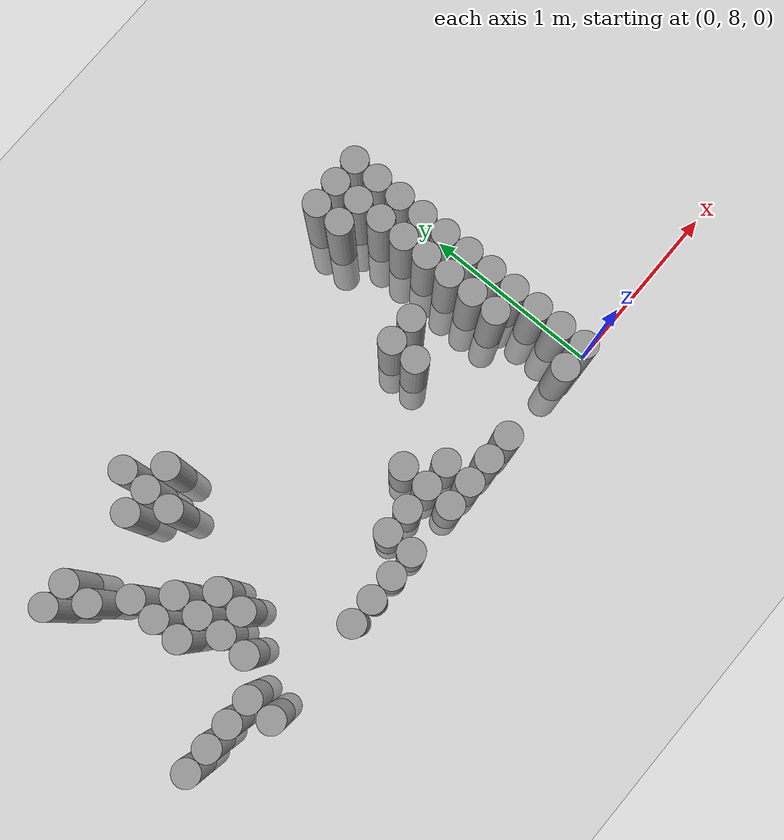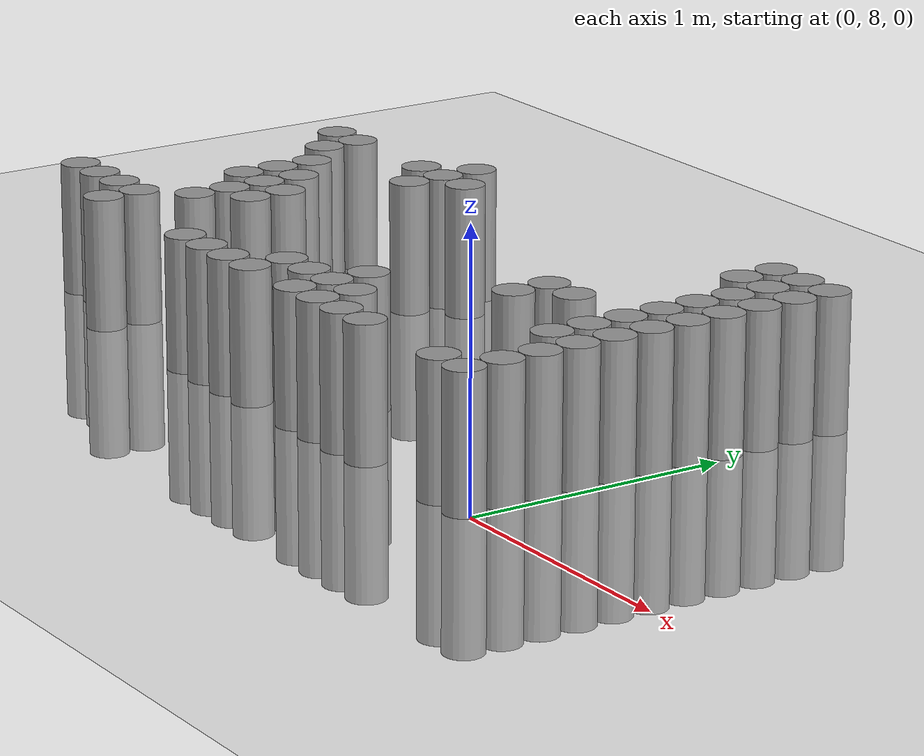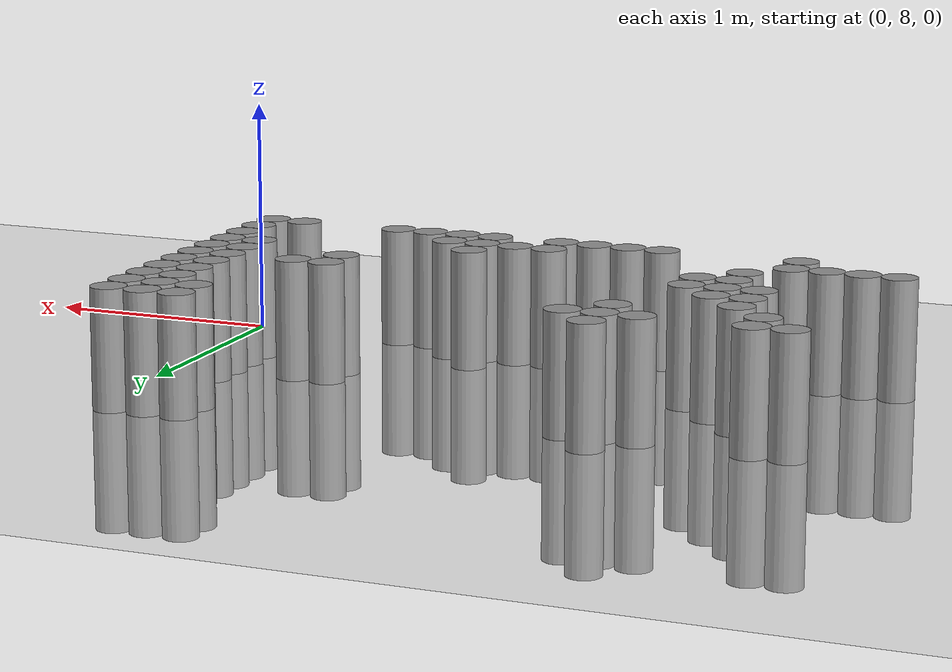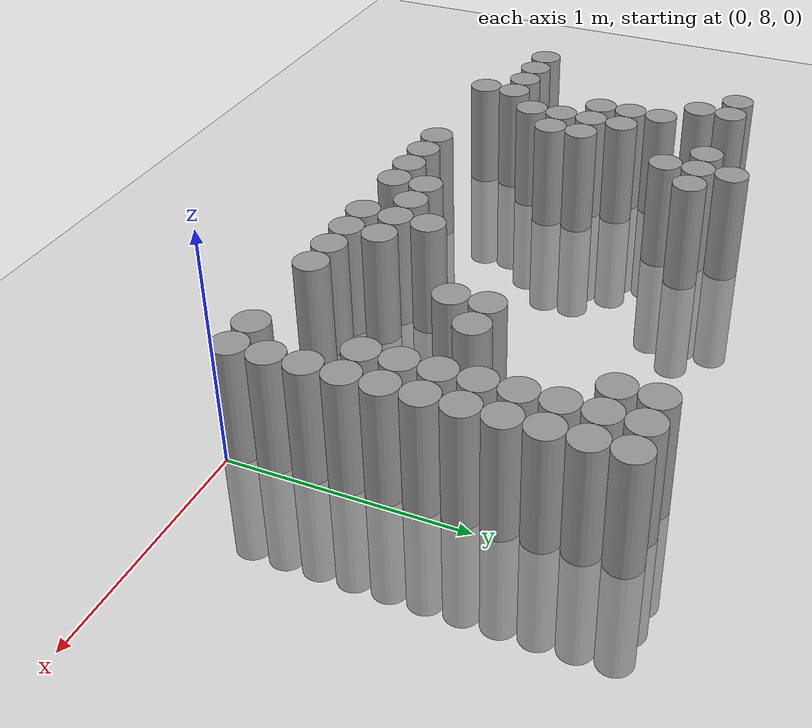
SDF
<sdf version="1.6">
 <world name="default">
  <model name="ground_plane">
   <static>1</static>
   <static>1</static>
   <link name="link">
    <collision name="collision">
     <geometry><plane><normal>0 0 1</normal><size>100 100</size></plane></geometry>
     <surface><friction><ode><mu>100</mu><mu2>50</mu2></ode></friction></surface>
    </collision>
    <visual name="visual">
     <cast_shadows>0</cast_shadows>
     <geometry><plane><normal>0 0 1</normal><size>100 100</size></plane></geometry>
     <material>
      <script><uri>file://media/materials/scripts/gazebo.material</uri><name>Gazebo/Grey</name></script>
     </material>
    </visual>
   </link>
  </model>
  <model name="unit_cylinder_166">
   <static>1</static>
   <pose>-2.925000 8.175000 0.000000 0.000000 0.000000 0.000000</pose>
   <link name="link">
    <inertial>
     <mass>1</mass>
     <inertia><ixx>0.145833</ixx><ixy>0</ixy><ixz>0</ixz><iyy>0.145833</iyy><iyz>0</iyz><izz>0.125</izz></inertia>
    </inertial>
    <collision name="collision">
     <geometry><cylinder><radius>0.075000</radius><length>1</length></cylinder></geometry>
    </collision>
    <visual name="visual">
     <geometry><cylinder><radius>0.075000</radius><length>1</length></cylinder></geometry>
     <material>
      <script><name>Gazebo/Grey</name><uri>file://media/materials/scripts/gazebo.material</uri></script>
     </material>
    </visual>
   </link>
  </model>
  <model name="unit_cylinder_169">
   <static>1</static>
   <pose>-2.775000 8.175000 0.000000 0.000000 0.000000 0.000000</pose>
   <link name="link">
    <inertial>
     <mass>1</mass>
     <inertia><ixx>0.145833</ixx><ixy>0</ixy><ixz>0</ixz><iyy>0.145833</iyy><iyz>0</iyz><izz>0.125</izz></inertia>
    </inertial>
    <collision name="collision">
     <geometry><cylinder><radius>0.075000</radius><length>1</length></cylinder></geometry>
    </collision>
    <visual name="visual">
     <geometry><cylinder><radius>0.075000</radius><length>1</length></cylinder></geometry>
     <material>
      <script><name>Gazebo/Grey</name><uri>file://media/materials/scripts/gazebo.material</uri></script>
     </material>
    </visual>
   </link>
  </model>
  <model name="unit_cylinder_170">
   <static>1</static>
   <pose>-2.775000 9.225000 0.000000 0.000000 0.000000 0.000000</pose>
   <link name="link">
    <inertial>
     <mass>1</mass>
     <inertia><ixx>0.145833</ixx><ixy>0</ixy><ixz>0</ixz><iyy>0.145833</iyy><iyz>0</iyz><izz>0.125</izz></inertia>
    </inertial>
    <collision name="collision">
     <geometry><cylinder><radius>0.075000</radius><length>1</length></cylinder></geometry>
    </collision>
    <visual name="visual">
     <geometry><cylinder><radius>0.075000</radius><length>1</length></cylinder></geometry>
     <material>
      <script><name>Gazebo/Grey</name><uri>file://media/materials/scripts/gazebo.material</uri></script>
     </material>
    </visual>
   </link>
  </model>
  <model name="unit_cylinder_175">
   <static>1</static>
   <pose>-2.625000 8.175000 0.000000 0.000000 0.000000 0.000000</pose>
   <link name="link">
    <inertial>
     <mass>1</mass>
     <inertia><ixx>0.145833</ixx><ixy>0</ixy><ixz>0</ixz><iyy>0.145833</iyy><iyz>0</iyz><izz>0.125</izz></inertia>
    </inertial>
    <collision name="collision">
     <geometry><cylinder><radius>0.075000</radius><length>1</length></cylinder></geometry>
    </collision>
    <visual name="visual">
     <geometry><cylinder><radius>0.075000</radius><length>1</length></cylinder></geometry>
     <material>
      <script><name>Gazebo/Grey</name><uri>file://media/materials/scripts/gazebo.material</uri></script>
     </material>
    </visual>
   </link>
  </model>
  <model name="unit_cylinder_176">
   <static>1</static>
   <pose>-2.625000 9.075000 0.000000 0.000000 0.000000 0.000000</pose>
   <link name="link">
    <inertial>
     <mass>1</mass>
     <inertia><ixx>0.145833</ixx><ixy>0</ixy><ixz>0</ixz><iyy>0.145833</iyy><iyz>0</iyz><izz>0.125</izz></inertia>
    </inertial>
    <collision name="collision">
     <geometry><cylinder><radius>0.075000</radius><length>1</length></cylinder></geometry>
    </collision>
    <visual name="visual">
     <geometry><cylinder><radius>0.075000</radius><length>1</length></cylinder></geometry>
     <material>
      <script><name>Gazebo/Grey</name><uri>file://media/materials/scripts/gazebo.material</uri></script>
     </material>
    </visual>
   </link>
  </model>
  <model name="unit_cylinder_177">
   <static>1</static>
   <pose>-2.625000 9.225000 0.000000 0.000000 0.000000 0.000000</pose>
   <link name="link">
    <inertial>
     <mass>1</mass>
     <inertia><ixx>0.145833</ixx><ixy>0</ixy><ixz>0</ixz><iyy>0.145833</iyy><iyz>0</iyz><izz>0.125</izz></inertia>
    </inertial>
    <collision name="collision">
     <geometry><cylinder><radius>0.075000</radius><length>1</length></cylinder></geometry>
    </collision>
    <visual name="visual">
     <geometry><cylinder><radius>0.075000</radius><length>1</length></cylinder></geometry>
     <material>
      <script><name>Gazebo/Grey</name><uri>file://media/materials/scripts/gazebo.material</uri></script>
     </material>
    </visual>
   </link>
  </model>
  <model name="unit_cylinder_182">
   <static>1</static>
   <pose>-2.475000 8.025000 0.000000 0.000000 0.000000 0.000000</pose>
   <link name="link">
    <inertial>
     <mass>1</mass>
     <inertia><ixx>0.145833</ixx><ixy>0</ixy><ixz>0</ixz><iyy>0.145833</iyy><iyz>0</iyz><izz>0.125</izz></inertia>
    </inertial>
    <collision name="collision">
     <geometry><cylinder><radius>0.075000</radius><length>1</length></cylinder></geometry>
    </collision>
    <visual name="visual">
     <geometry><cylinder><radius>0.075000</radius><length>1</length></cylinder></geometry>
     <material>
      <script><name>Gazebo/Grey</name><uri>file://media/materials/scripts/gazebo.material</uri></script>
     </material>
    </visual>
   </link>
  </model>
  <model name="unit_cylinder_183">
   <static>1</static>
   <pose>-2.475000 8.175000 0.000000 0.000000 0.000000 0.000000</pose>
   <link name="link">
    <inertial>
     <mass>1</mass>
     <inertia><ixx>0.145833</ixx><ixy>0</ixy><ixz>0</ixz><iyy>0.145833</iyy><iyz>0</iyz><izz>0.125</izz></inertia>
    </inertial>
    <collision name="collision">
     <geometry><cylinder><radius>0.075000</radius><length>1</length></cylinder></geometry>
    </collision>
    <visual name="visual">
     <geometry><cylinder><radius>0.075000</radius><length>1</length></cylinder></geometry>
     <material>
      <script><name>Gazebo/Grey</name><uri>file://media/materials/scripts/gazebo.material</uri></script>
     </material>
    </visual>
   </link>
  </model>
  <model name="unit_cylinder_184">
   <static>1</static>
   <pose>-2.475000 8.625000 0.000000 0.000000 0.000000 0.000000</pose>
   <link name="link">
    <inertial>
     <mass>1</mass>
     <inertia><ixx>0.145833</ixx><ixy>0</ixy><ixz>0</ixz><iyy>0.145833</iyy><iyz>0</iyz><izz>0.125</izz></inertia>
    </inertial>
    <collision name="collision">
     <geometry><cylinder><radius>0.075000</radius><length>1</length></cylinder></geometry>
    </collision>
    <visual name="visual">
     <geometry><cylinder><radius>0.075000</radius><length>1</length></cylinder></geometry>
     <material>
      <script><name>Gazebo/Grey</name><uri>file://media/materials/scripts/gazebo.material</uri></script>
     </material>
    </visual>
   </link>
  </model>
  <model name="unit_cylinder_185">
   <static>1</static>
   <pose>-2.475000 8.775000 0.000000 0.000000 0.000000 0.000000</pose>
   <link name="link">
    <inertial>
     <mass>1</mass>
     <inertia><ixx>0.145833</ixx><ixy>0</ixy><ixz>0</ixz><iyy>0.145833</iyy><iyz>0</iyz><izz>0.125</izz></inertia>
    </inertial>
    <collision name="collision">
     <geometry><cylinder><radius>0.075000</radius><length>1</length></cylinder></geometry>
    </collision>
    <visual name="visual">
     <geometry><cylinder><radius>0.075000</radius><length>1</length></cylinder></geometry>
     <material>
      <script><name>Gazebo/Grey</name><uri>file://media/materials/scripts/gazebo.material</uri></script>
     </material>
    </visual>
   </link>
  </model>
  <model name="unit_cylinder_186">
   <static>1</static>
   <pose>-2.475000 8.925000 0.000000 0.000000 0.000000 0.000000</pose>
   <link name="link">
    <inertial>
     <mass>1</mass>
     <inertia><ixx>0.145833</ixx><ixy>0</ixy><ixz>0</ixz><iyy>0.145833</iyy><iyz>0</iyz><izz>0.125</izz></inertia>
    </inertial>
    <collision name="collision">
     <geometry><cylinder><radius>0.075000</radius><length>1</length></cylinder></geometry>
    </collision>
    <visual name="visual">
     <geometry><cylinder><radius>0.075000</radius><length>1</length></cylinder></geometry>
     <material>
      <script><name>Gazebo/Grey</name><uri>file://media/materials/scripts/gazebo.material</uri></script>
     </material>
    </visual>
   </link>
  </model>
  <model name="unit_cylinder_188">
   <static>1</static>
   <pose>-2.325000 8.325000 0.000000 0.000000 0.000000 0.000000</pose>
   <link name="link">
    <inertial>
     <mass>1</mass>
     <inertia><ixx>0.145833</ixx><ixy>0</ixy><ixz>0</ixz><iyy>0.145833</iyy><iyz>0</iyz><izz>0.125</izz></inertia>
    </inertial>
    <collision name="collision">
     <geometry><cylinder><radius>0.075000</radius><length>1</length></cylinder></geometry>
    </collision>
    <visual name="visual">
     <geometry><cylinder><radius>0.075000</radius><length>1</length></cylinder></geometry>
     <material>
      <script><name>Gazebo/Grey</name><uri>file://media/materials/scripts/gazebo.material</uri></script>
     </material>
    </visual>
   </link>
  </model>
  <model name="unit_cylinder_189">
   <static>1</static>
   <pose>-2.325000 8.475000 0.000000 0.000000 0.000000 0.000000</pose>
   <link name="link">
    <inertial>
     <mass>1</mass>
     <inertia><ixx>0.145833</ixx><ixy>0</ixy><ixz>0</ixz><iyy>0.145833</iyy><iyz>0</iyz><izz>0.125</izz></inertia>
    </inertial>
    <collision name="collision">
     <geometry><cylinder><radius>0.075000</radius><length>1</length></cylinder></geometry>
    </collision>
    <visual name="visual">
     <geometry><cylinder><radius>0.075000</radius><length>1</length></cylinder></geometry>
     <material>
      <script><name>Gazebo/Grey</name><uri>file://media/materials/scripts/gazebo.material</uri></script>
     </material>
    </visual>
   </link>
  </model>
  <model name="unit_cylinder_190">
   <static>1</static>
   <pose>-2.325000 8.625000 0.000000 0.000000 0.000000 0.000000</pose>
   <link name="link">
    <inertial>
     <mass>1</mass>
     <inertia><ixx>0.145833</ixx><ixy>0</ixy><ixz>0</ixz><iyy>0.145833</iyy><iyz>0</iyz><izz>0.125</izz></inertia>
    </inertial>
    <collision name="collision">
     <geometry><cylinder><radius>0.075000</radius><length>1</length></cylinder></geometry>
    </collision>
    <visual name="visual">
     <geometry><cylinder><radius>0.075000</radius><length>1</length></cylinder></geometry>
     <material>
      <script><name>Gazebo/Grey</name><uri>file://media/materials/scripts/gazebo.material</uri></script>
     </material>
    </visual>
   </link>
  </model>
  <model name="unit_cylinder_191">
   <static>1</static>
   <pose>-2.325000 8.775000 0.000000 0.000000 0.000000 0.000000</pose>
   <link name="link">
    <inertial>
     <mass>1</mass>
     <inertia><ixx>0.145833</ixx><ixy>0</ixy><ixz>0</ixz><iyy>0.145833</iyy><iyz>0</iyz><izz>0.125</izz></inertia>
    </inertial>
    <collision name="collision">
     <geometry><cylinder><radius>0.075000</radius><length>1</length></cylinder></geometry>
    </collision>
    <visual name="visual">
     <geometry><cylinder><radius>0.075000</radius><length>1</length></cylinder></geometry>
     <material>
      <script><name>Gazebo/Grey</name><uri>file://media/materials/scripts/gazebo.material</uri></script>
     </material>
    </visual>
   </link>
  </model>
  <model name="unit_cylinder_193">
   <static>1</static>
   <pose>-2.175000 8.475000 0.000000 0.000000 0.000000 0.000000</pose>
   <link name="link">
    <inertial>
     <mass>1</mass>
     <inertia><ixx>0.145833</ixx><ixy>0</ixy><ixz>0</ixz><iyy>0.145833</iyy><iyz>0</iyz><izz>0.125</izz></inertia>
    </inertial>
    <collision name="collision">
     <geometry><cylinder><radius>0.075000</radius><length>1</length></cylinder></geometry>
    </collision>
    <visual name="visual">
     <geometry><cylinder><radius>0.075000</radius><length>1</length></cylinder></geometry>
     <material>
      <script><name>Gazebo/Grey</name><uri>file://media/materials/scripts/gazebo.material</uri></script>
     </material>
    </visual>
   </link>
  </model>
  <model name="unit_cylinder_194">
   <static>1</static>
   <pose>-2.175000 8.625000 0.000000 0.000000 0.000000 0.000000</pose>
   <link name="link">
    <inertial>
     <mass>1</mass>
     <inertia><ixx>0.145833</ixx><ixy>0</ixy><ixz>0</ixz><iyy>0.145833</iyy><iyz>0</iyz><izz>0.125</izz></inertia>
    </inertial>
    <collision name="collision">
     <geometry><cylinder><radius>0.075000</radius><length>1</length></cylinder></geometry>
    </collision>
    <visual name="visual">
     <geometry><cylinder><radius>0.075000</radius><length>1</length></cylinder></geometry>
     <material>
      <script><name>Gazebo/Grey</name><uri>file://media/materials/scripts/gazebo.material</uri></script>
     </material>
    </visual>
   </link>
  </model>
  <model name="unit_cylinder_195">
   <static>1</static>
   <pose>-2.175000 9.225000 0.000000 0.000000 0.000000 0.000000</pose>
   <link name="link">
    <inertial>
     <mass>1</mass>
     <inertia><ixx>0.145833</ixx><ixy>0</ixy><ixz>0</ixz><iyy>0.145833</iyy><iyz>0</iyz><izz>0.125</izz></inertia>
    </inertial>
    <collision name="collision">
     <geometry><cylinder><radius>0.075000</radius><length>1</length></cylinder></geometry>
    </collision>
    <visual name="visual">
     <geometry><cylinder><radius>0.075000</radius><length>1</length></cylinder></geometry>
     <material>
      <script><name>Gazebo/Grey</name><uri>file://media/materials/scripts/gazebo.material</uri></script>
     </material>
    </visual>
   </link>
  </model>
  <model name="unit_cylinder_196">
   <static>1</static>
   <pose>-2.025000 9.075000 0.000000 0.000000 0.000000 0.000000</pose>
   <link name="link">
    <inertial>
     <mass>1</mass>
     <inertia><ixx>0.145833</ixx><ixy>0</ixy><ixz>0</ixz><iyy>0.145833</iyy><iyz>0</iyz><izz>0.125</izz></inertia>
    </inertial>
    <collision name="collision">
     <geometry><cylinder><radius>0.075000</radius><length>1</length></cylinder></geometry>
    </collision>
    <visual name="visual">
     <geometry><cylinder><radius>0.075000</radius><length>1</length></cylinder></geometry>
     <material>
      <script><name>Gazebo/Grey</name><uri>file://media/materials/scripts/gazebo.material</uri></script>
     </material>
    </visual>
   </link>
  </model>
  <model name="unit_cylinder_197">
   <static>1</static>
   <pose>-2.025000 9.225000 0.000000 0.000000 0.000000 0.000000</pose>
   <link name="link">
    <inertial>
     <mass>1</mass>
     <inertia><ixx>0.145833</ixx><ixy>0</ixy><ixz>0</ixz><iyy>0.145833</iyy><iyz>0</iyz><izz>0.125</izz></inertia>
    </inertial>
    <collision name="collision">
     <geometry><cylinder><radius>0.075000</radius><length>1</length></cylinder></geometry>
    </collision>
    <visual name="visual">
     <geometry><cylinder><radius>0.075000</radius><length>1</length></cylinder></geometry>
     <material>
      <script><name>Gazebo/Grey</name><uri>file://media/materials/scripts/gazebo.material</uri></script>
     </material>
    </visual>
   </link>
  </model>
  <model name="unit_cylinder_198">
   <static>1</static>
   <pose>-2.025000 9.375000 0.000000 0.000000 0.000000 0.000000</pose>
   <link name="link">
    <inertial>
     <mass>1</mass>
     <inertia><ixx>0.145833</ixx><ixy>0</ixy><ixz>0</ixz><iyy>0.145833</iyy><iyz>0</iyz><izz>0.125</izz></inertia>
    </inertial>
    <collision name="collision">
     <geometry><cylinder><radius>0.075000</radius><length>1</length></cylinder></geometry>
    </collision>
    <visual name="visual">
     <geometry><cylinder><radius>0.075000</radius><length>1</length></cylinder></geometry>
     <material>
      <script><name>Gazebo/Grey</name><uri>file://media/materials/scripts/gazebo.material</uri></script>
     </material>
    </visual>
   </link>
  </model>
  <model name="unit_cylinder_199">
   <static>1</static>
   <pose>-1.875000 8.025000 0.000000 0.000000 0.000000 0.000000</pose>
   <link name="link">
    <inertial>
     <mass>1</mass>
     <inertia><ixx>0.145833</ixx><ixy>0</ixy><ixz>0</ixz><iyy>0.145833</iyy><iyz>0</iyz><izz>0.125</izz></inertia>
    </inertial>
    <collision name="collision">
     <geometry><cylinder><radius>0.075000</radius><length>1</length></cylinder></geometry>
    </collision>
    <visual name="visual">
     <geometry><cylinder><radius>0.075000</radius><length>1</length></cylinder></geometry>
     <material>
      <script><name>Gazebo/Grey</name><uri>file://media/materials/scripts/gazebo.material</uri></script>
     </material>
    </visual>
   </link>
  </model>
  <model name="unit_cylinder_200">
   <static>1</static>
   <pose>-1.875000 9.225000 0.000000 0.000000 0.000000 0.000000</pose>
   <link name="link">
    <inertial>
     <mass>1</mass>
     <inertia><ixx>0.145833</ixx><ixy>0</ixy><ixz>0</ixz><iyy>0.145833</iyy><iyz>0</iyz><izz>0.125</izz></inertia>
    </inertial>
    <collision name="collision">
     <geometry><cylinder><radius>0.075000</radius><length>1</length></cylinder></geometry>
    </collision>
    <visual name="visual">
     <geometry><cylinder><radius>0.075000</radius><length>1</length></cylinder></geometry>
     <material>
      <script><name>Gazebo/Grey</name><uri>file://media/materials/scripts/gazebo.material</uri></script>
     </material>
    </visual>
   </link>
  </model>
  <model name="unit_cylinder_202">
   <static>1</static>
   <pose>-1.725000 8.025000 0.000000 0.000000 0.000000 0.000000</pose>
   <link name="link">
    <inertial>
     <mass>1</mass>
     <inertia><ixx>0.145833</ixx><ixy>0</ixy><ixz>0</ixz><iyy>0.145833</iyy><iyz>0</iyz><izz>0.125</izz></inertia>
    </inertial>
    <collision name="collision">
     <geometry><cylinder><radius>0.075000</radius><length>1</length></cylinder></geometry>
    </collision>
    <visual name="visual">
     <geometry><cylinder><radius>0.075000</radius><length>1</length></cylinder></geometry>
     <material>
      <script><name>Gazebo/Grey</name><uri>file://media/materials/scripts/gazebo.material</uri></script>
     </material>
    </visual>
   </link>
  </model>
  <model name="unit_cylinder_205">
   <static>1</static>
   <pose>-1.575000 8.025000 0.000000 0.000000 0.000000 0.000000</pose>
   <link name="link">
    <inertial>
     <mass>1</mass>
     <inertia><ixx>0.145833</ixx><ixy>0</ixy><ixz>0</ixz><iyy>0.145833</iyy><iyz>0</iyz><izz>0.125</izz></inertia>
    </inertial>
    <collision name="collision">
     <geometry><cylinder><radius>0.075000</radius><length>1</length></cylinder></geometry>
    </collision>
    <visual name="visual">
     <geometry><cylinder><radius>0.075000</radius><length>1</length></cylinder></geometry>
     <material>
      <script><name>Gazebo/Grey</name><uri>file://media/materials/scripts/gazebo.material</uri></script>
     </material>
    </visual>
   </link>
  </model>
  <model name="unit_cylinder_208">
   <static>1</static>
   <pose>-1.425000 8.025000 0.000000 0.000000 0.000000 0.000000</pose>
   <link name="link">
    <inertial>
     <mass>1</mass>
     <inertia><ixx>0.145833</ixx><ixy>0</ixy><ixz>0</ixz><iyy>0.145833</iyy><iyz>0</iyz><izz>0.125</izz></inertia>
    </inertial>
    <collision name="collision">
     <geometry><cylinder><radius>0.075000</radius><length>1</length></cylinder></geometry>
    </collision>
    <visual name="visual">
     <geometry><cylinder><radius>0.075000</radius><length>1</length></cylinder></geometry>
     <material>
      <script><name>Gazebo/Grey</name><uri>file://media/materials/scripts/gazebo.material</uri></script>
     </material>
    </visual>
   </link>
  </model>
  <model name="unit_cylinder_209">
   <static>1</static>
   <pose>-1.425000 8.175000 0.000000 0.000000 0.000000 0.000000</pose>
   <link name="link">
    <inertial>
     <mass>1</mass>
     <inertia><ixx>0.145833</ixx><ixy>0</ixy><ixz>0</ixz><iyy>0.145833</iyy><iyz>0</iyz><izz>0.125</izz></inertia>
    </inertial>
    <collision name="collision">
     <geometry><cylinder><radius>0.075000</radius><length>1</length></cylinder></geometry>
    </collision>
    <visual name="visual">
     <geometry><cylinder><radius>0.075000</radius><length>1</length></cylinder></geometry>
     <material>
      <script><name>Gazebo/Grey</name><uri>file://media/materials/scripts/gazebo.material</uri></script>
     </material>
    </visual>
   </link>
  </model>
  <model name="unit_cylinder_215">
   <static>1</static>
   <pose>-1.275000 8.175000 0.000000 0.000000 0.000000 0.000000</pose>
   <link name="link">
    <inertial>
     <mass>1</mass>
     <inertia><ixx>0.145833</ixx><ixy>0</ixy><ixz>0</ixz><iyy>0.145833</iyy><iyz>0</iyz><izz>0.125</izz></inertia>
    </inertial>
    <collision name="collision">
     <geometry><cylinder><radius>0.075000</radius><length>1</length></cylinder></geometry>
    </collision>
    <visual name="visual">
     <geometry><cylinder><radius>0.075000</radius><length>1</length></cylinder></geometry>
     <material>
      <script><name>Gazebo/Grey</name><uri>file://media/materials/scripts/gazebo.material</uri></script>
     </material>
    </visual>
   </link>
  </model>
  <model name="unit_cylinder_219">
   <static>1</static>
   <pose>-1.125000 8.025000 0.000000 0.000000 0.000000 0.000000</pose>
   <link name="link">
    <inertial>
     <mass>1</mass>
     <inertia><ixx>0.145833</ixx><ixy>0</ixy><ixz>0</ixz><iyy>0.145833</iyy><iyz>0</iyz><izz>0.125</izz></inertia>
    </inertial>
    <collision name="collision">
     <geometry><cylinder><radius>0.075000</radius><length>1</length></cylinder></geometry>
    </collision>
    <visual name="visual">
     <geometry><cylinder><radius>0.075000</radius><length>1</length></cylinder></geometry>
     <material>
      <script><name>Gazebo/Grey</name><uri>file://media/materials/scripts/gazebo.material</uri></script>
     </material>
    </visual>
   </link>
  </model>
  <model name="unit_cylinder_220">
   <static>1</static>
   <pose>-1.125000 8.175000 0.000000 0.000000 0.000000 0.000000</pose>
   <link name="link">
    <inertial>
     <mass>1</mass>
     <inertia><ixx>0.145833</ixx><ixy>0</ixy><ixz>0</ixz><iyy>0.145833</iyy><iyz>0</iyz><izz>0.125</izz></inertia>
    </inertial>
    <collision name="collision">
     <geometry><cylinder><radius>0.075000</radius><length>1</length></cylinder></geometry>
    </collision>
    <visual name="visual">
     <geometry><cylinder><radius>0.075000</radius><length>1</length></cylinder></geometry>
     <material>
      <script><name>Gazebo/Grey</name><uri>file://media/materials/scripts/gazebo.material</uri></script>
     </material>
    </visual>
   </link>
  </model>
  <model name="unit_cylinder_221">
   <static>1</static>
   <pose>-1.125000 8.325000 0.000000 0.000000 0.000000 0.000000</pose>
   <link name="link">
    <inertial>
     <mass>1</mass>
     <inertia><ixx>0.145833</ixx><ixy>0</ixy><ixz>0</ixz><iyy>0.145833</iyy><iyz>0</iyz><izz>0.125</izz></inertia>
    </inertial>
    <collision name="collision">
     <geometry><cylinder><radius>0.075000</radius><length>1</length></cylinder></geometry>
    </collision>
    <visual name="visual">
     <geometry><cylinder><radius>0.075000</radius><length>1</length></cylinder></geometry>
     <material>
      <script><name>Gazebo/Grey</name><uri>file://media/materials/scripts/gazebo.material</uri></script>
     </material>
    </visual>
   </link>
  </model>
  <model name="unit_cylinder_224">
   <static>1</static>
   <pose>-0.975000 8.025000 0.000000 0.000000 0.000000 0.000000</pose>
   <link name="link">
    <inertial>
     <mass>1</mass>
     <inertia><ixx>0.145833</ixx><ixy>0</ixy><ixz>0</ixz><iyy>0.145833</iyy><iyz>0</iyz><izz>0.125</izz></inertia>
    </inertial>
    <collision name="collision">
     <geometry><cylinder><radius>0.075000</radius><length>1</length></cylinder></geometry>
    </collision>
    <visual name="visual">
     <geometry><cylinder><radius>0.075000</radius><length>1</length></cylinder></geometry>
     <material>
      <script><name>Gazebo/Grey</name><uri>file://media/materials/scripts/gazebo.material</uri></script>
     </material>
    </visual>
   </link>
  </model>
  <model name="unit_cylinder_225">
   <static>1</static>
   <pose>-0.975000 8.175000 0.000000 0.000000 0.000000 0.000000</pose>
   <link name="link">
    <inertial>
     <mass>1</mass>
     <inertia><ixx>0.145833</ixx><ixy>0</ixy><ixz>0</ixz><iyy>0.145833</iyy><iyz>0</iyz><izz>0.125</izz></inertia>
    </inertial>
    <collision name="collision">
     <geometry><cylinder><radius>0.075000</radius><length>1</length></cylinder></geometry>
    </collision>
    <visual name="visual">
     <geometry><cylinder><radius>0.075000</radius><length>1</length></cylinder></geometry>
     <material>
      <script><name>Gazebo/Grey</name><uri>file://media/materials/scripts/gazebo.material</uri></script>
     </material>
    </visual>
   </link>
  </model>
  <model name="unit_cylinder_228">
   <static>1</static>
   <pose>-0.825000 8.025000 0.000000 0.000000 0.000000 0.000000</pose>
   <link name="link">
    <inertial>
     <mass>1</mass>
     <inertia><ixx>0.145833</ixx><ixy>0</ixy><ixz>0</ixz><iyy>0.145833</iyy><iyz>0</iyz><izz>0.125</izz></inertia>
    </inertial>
    <collision name="collision">
     <geometry><cylinder><radius>0.075000</radius><length>1</length></cylinder></geometry>
    </collision>
    <visual name="visual">
     <geometry><cylinder><radius>0.075000</radius><length>1</length></cylinder></geometry>
     <material>
      <script><name>Gazebo/Grey</name><uri>file://media/materials/scripts/gazebo.material</uri></script>
     </material>
    </visual>
   </link>
  </model>
  <model name="unit_cylinder_233">
   <static>1</static>
   <pose>-0.675000 8.025000 0.000000 0.000000 0.000000 0.000000</pose>
   <link name="link">
    <inertial>
     <mass>1</mass>
     <inertia><ixx>0.145833</ixx><ixy>0</ixy><ixz>0</ixz><iyy>0.145833</iyy><iyz>0</iyz><izz>0.125</izz></inertia>
    </inertial>
    <collision name="collision">
     <geometry><cylinder><radius>0.075000</radius><length>1</length></cylinder></geometry>
    </collision>
    <visual name="visual">
     <geometry><cylinder><radius>0.075000</radius><length>1</length></cylinder></geometry>
     <material>
      <script><name>Gazebo/Grey</name><uri>file://media/materials/scripts/gazebo.material</uri></script>
     </material>
    </visual>
   </link>
  </model>
  <model name="unit_cylinder_234">
   <static>1</static>
   <pose>-0.675000 8.625000 0.000000 0.000000 0.000000 0.000000</pose>
   <link name="link">
    <inertial>
     <mass>1</mass>
     <inertia><ixx>0.145833</ixx><ixy>0</ixy><ixz>0</ixz><iyy>0.145833</iyy><iyz>0</iyz><izz>0.125</izz></inertia>
    </inertial>
    <collision name="collision">
     <geometry><cylinder><radius>0.075000</radius><length>1</length></cylinder></geometry>
    </collision>
    <visual name="visual">
     <geometry><cylinder><radius>0.075000</radius><length>1</length></cylinder></geometry>
     <material>
      <script><name>Gazebo/Grey</name><uri>file://media/materials/scripts/gazebo.material</uri></script>
     </material>
    </visual>
   </link>
  </model>
  <model name="unit_cylinder_235">
   <static>1</static>
   <pose>-0.675000 8.775000 0.000000 0.000000 0.000000 0.000000</pose>
   <link name="link">
    <inertial>
     <mass>1</mass>
     <inertia><ixx>0.145833</ixx><ixy>0</ixy><ixz>0</ixz><iyy>0.145833</iyy><iyz>0</iyz><izz>0.125</izz></inertia>
    </inertial>
    <collision name="collision">
     <geometry><cylinder><radius>0.075000</radius><length>1</length></cylinder></geometry>
    </collision>
    <visual name="visual">
     <geometry><cylinder><radius>0.075000</radius><length>1</length></cylinder></geometry>
     <material>
      <script><name>Gazebo/Grey</name><uri>file://media/materials/scripts/gazebo.material</uri></script>
     </material>
    </visual>
   </link>
  </model>
  <model name="unit_cylinder_240">
   <static>1</static>
   <pose>-0.525000 8.775000 0.000000 0.000000 0.000000 0.000000</pose>
   <link name="link">
    <inertial>
     <mass>1</mass>
     <inertia><ixx>0.145833</ixx><ixy>0</ixy><ixz>0</ixz><iyy>0.145833</iyy><iyz>0</iyz><izz>0.125</izz></inertia>
    </inertial>
    <collision name="collision">
     <geometry><cylinder><radius>0.075000</radius><length>1</length></cylinder></geometry>
    </collision>
    <visual name="visual">
     <geometry><cylinder><radius>0.075000</radius><length>1</length></cylinder></geometry>
     <material>
      <script><name>Gazebo/Grey</name><uri>file://media/materials/scripts/gazebo.material</uri></script>
     </material>
    </visual>
   </link>
  </model>
  <model name="unit_cylinder_248">
   <static>1</static>
   <pose>-0.375000 9.375000 0.000000 0.000000 0.000000 0.000000</pose>
   <link name="link">
    <inertial>
     <mass>1</mass>
     <inertia><ixx>0.145833</ixx><ixy>0</ixy><ixz>0</ixz><iyy>0.145833</iyy><iyz>0</iyz><izz>0.125</izz></inertia>
    </inertial>
    <collision name="collision">
     <geometry><cylinder><radius>0.075000</radius><length>1</length></cylinder></geometry>
    </collision>
    <visual name="visual">
     <geometry><cylinder><radius>0.075000</radius><length>1</length></cylinder></geometry>
     <material>
      <script><name>Gazebo/Grey</name><uri>file://media/materials/scripts/gazebo.material</uri></script>
     </material>
    </visual>
   </link>
  </model>
  <model name="unit_cylinder_249">
   <static>1</static>
   <pose>-0.375000 9.525000 0.000000 0.000000 0.000000 0.000000</pose>
   <link name="link">
    <inertial>
     <mass>1</mass>
     <inertia><ixx>0.145833</ixx><ixy>0</ixy><ixz>0</ixz><iyy>0.145833</iyy><iyz>0</iyz><izz>0.125</izz></inertia>
    </inertial>
    <collision name="collision">
     <geometry><cylinder><radius>0.075000</radius><length>1</length></cylinder></geometry>
    </collision>
    <visual name="visual">
     <geometry><cylinder><radius>0.075000</radius><length>1</length></cylinder></geometry>
     <material>
      <script><name>Gazebo/Grey</name><uri>file://media/materials/scripts/gazebo.material</uri></script>
     </material>
    </visual>
   </link>
  </model>
  <model name="unit_cylinder_261">
   <static>1</static>
   <pose>-0.225000 8.025000 0.000000 0.000000 0.000000 0.000000</pose>
   <link name="link">
    <inertial>
     <mass>1</mass>
     <inertia><ixx>0.145833</ixx><ixy>0</ixy><ixz>0</ixz><iyy>0.145833</iyy><iyz>0</iyz><izz>0.125</izz></inertia>
    </inertial>
    <collision name="collision">
     <geometry><cylinder><radius>0.075000</radius><length>1</length></cylinder></geometry>
    </collision>
    <visual name="visual">
     <geometry><cylinder><radius>0.075000</radius><length>1</length></cylinder></geometry>
     <material>
      <script><name>Gazebo/Grey</name><uri>file://media/materials/scripts/gazebo.material</uri></script>
     </material>
    </visual>
   </link>
  </model>
  <model name="unit_cylinder_262">
   <static>1</static>
   <pose>-0.225000 8.475000 0.000000 0.000000 0.000000 0.000000</pose>
   <link name="link">
    <inertial>
     <mass>1</mass>
     <inertia><ixx>0.145833</ixx><ixy>0</ixy><ixz>0</ixz><iyy>0.145833</iyy><iyz>0</iyz><izz>0.125</izz></inertia>
    </inertial>
    <collision name="collision">
     <geometry><cylinder><radius>0.075000</radius><length>1</length></cylinder></geometry>
    </collision>
    <visual name="visual">
     <geometry><cylinder><radius>0.075000</radius><length>1</length></cylinder></geometry>
     <material>
      <script><name>Gazebo/Grey</name><uri>file://media/materials/scripts/gazebo.material</uri></script>
     </material>
    </visual>
   </link>
  </model>
  <model name="unit_cylinder_263">
   <static>1</static>
   <pose>-0.225000 8.625000 0.000000 0.000000 0.000000 0.000000</pose>
   <link name="link">
    <inertial>
     <mass>1</mass>
     <inertia><ixx>0.145833</ixx><ixy>0</ixy><ixz>0</ixz><iyy>0.145833</iyy><iyz>0</iyz><izz>0.125</izz></inertia>
    </inertial>
    <collision name="collision">
     <geometry><cylinder><radius>0.075000</radius><length>1</length></cylinder></geometry>
    </collision>
    <visual name="visual">
     <geometry><cylinder><radius>0.075000</radius><length>1</length></cylinder></geometry>
     <material>
      <script><name>Gazebo/Grey</name><uri>file://media/materials/scripts/gazebo.material</uri></script>
     </material>
    </visual>
   </link>
  </model>
  <model name="unit_cylinder_264">
   <static>1</static>
   <pose>-0.225000 8.775000 0.000000 0.000000 0.000000 0.000000</pose>
   <link name="link">
    <inertial>
     <mass>1</mass>
     <inertia><ixx>0.145833</ixx><ixy>0</ixy><ixz>0</ixz><iyy>0.145833</iyy><iyz>0</iyz><izz>0.125</izz></inertia>
    </inertial>
    <collision name="collision">
     <geometry><cylinder><radius>0.075000</radius><length>1</length></cylinder></geometry>
    </collision>
    <visual name="visual">
     <geometry><cylinder><radius>0.075000</radius><length>1</length></cylinder></geometry>
     <material>
      <script><name>Gazebo/Grey</name><uri>file://media/materials/scripts/gazebo.material</uri></script>
     </material>
    </visual>
   </link>
  </model>
  <model name="unit_cylinder_265">
   <static>1</static>
   <pose>-0.225000 8.925000 0.000000 0.000000 0.000000 0.000000</pose>
   <link name="link">
    <inertial>
     <mass>1</mass>
     <inertia><ixx>0.145833</ixx><ixy>0</ixy><ixz>0</ixz><iyy>0.145833</iyy><iyz>0</iyz><izz>0.125</izz></inertia>
    </inertial>
    <collision name="collision">
     <geometry><cylinder><radius>0.075000</radius><length>1</length></cylinder></geometry>
    </collision>
    <visual name="visual">
     <geometry><cylinder><radius>0.075000</radius><length>1</length></cylinder></geometry>
     <material>
      <script><name>Gazebo/Grey</name><uri>file://media/materials/scripts/gazebo.material</uri></script>
     </material>
    </visual>
   </link>
  </model>
  <model name="unit_cylinder_266">
   <static>1</static>
   <pose>-0.225000 9.075000 0.000000 0.000000 0.000000 0.000000</pose>
   <link name="link">
    <inertial>
     <mass>1</mass>
     <inertia><ixx>0.145833</ixx><ixy>0</ixy><ixz>0</ixz><iyy>0.145833</iyy><iyz>0</iyz><izz>0.125</izz></inertia>
    </inertial>
    <collision name="collision">
     <geometry><cylinder><radius>0.075000</radius><length>1</length></cylinder></geometry>
    </collision>
    <visual name="visual">
     <geometry><cylinder><radius>0.075000</radius><length>1</length></cylinder></geometry>
     <material>
      <script><name>Gazebo/Grey</name><uri>file://media/materials/scripts/gazebo.material</uri></script>
     </material>
    </visual>
   </link>
  </model>
  <model name="unit_cylinder_267">
   <static>1</static>
   <pose>-0.225000 9.225000 0.000000 0.000000 0.000000 0.000000</pose>
   <link name="link">
    <inertial>
     <mass>1</mass>
     <inertia><ixx>0.145833</ixx><ixy>0</ixy><ixz>0</ixz><iyy>0.145833</iyy><iyz>0</iyz><izz>0.125</izz></inertia>
    </inertial>
    <collision name="collision">
     <geometry><cylinder><radius>0.075000</radius><length>1</length></cylinder></geometry>
    </collision>
    <visual name="visual">
     <geometry><cylinder><radius>0.075000</radius><length>1</length></cylinder></geometry>
     <material>
      <script><name>Gazebo/Grey</name><uri>file://media/materials/scripts/gazebo.material</uri></script>
     </material>
    </visual>
   </link>
  </model>
  <model name="unit_cylinder_268">
   <static>1</static>
   <pose>-0.225000 9.375000 0.000000 0.000000 0.000000 0.000000</pose>
   <link name="link">
    <inertial>
     <mass>1</mass>
     <inertia><ixx>0.145833</ixx><ixy>0</ixy><ixz>0</ixz><iyy>0.145833</iyy><iyz>0</iyz><izz>0.125</izz></inertia>
    </inertial>
    <collision name="collision">
     <geometry><cylinder><radius>0.075000</radius><length>1</length></cylinder></geometry>
    </collision>
    <visual name="visual">
     <geometry><cylinder><radius>0.075000</radius><length>1</length></cylinder></geometry>
     <material>
      <script><name>Gazebo/Grey</name><uri>file://media/materials/scripts/gazebo.material</uri></script>
     </material>
    </visual>
   </link>
  </model>
  <model name="unit_cylinder_269">
   <static>1</static>
   <pose>-0.225000 9.525000 0.000000 0.000000 0.000000 0.000000</pose>
   <link name="link">
    <inertial>
     <mass>1</mass>
     <inertia><ixx>0.145833</ixx><ixy>0</ixy><ixz>0</ixz><iyy>0.145833</iyy><iyz>0</iyz><izz>0.125</izz></inertia>
    </inertial>
    <collision name="collision">
     <geometry><cylinder><radius>0.075000</radius><length>1</length></cylinder></geometry>
    </collision>
    <visual name="visual">
     <geometry><cylinder><radius>0.075000</radius><length>1</length></cylinder></geometry>
     <material>
      <script><name>Gazebo/Grey</name><uri>file://media/materials/scripts/gazebo.material</uri></script>
     </material>
    </visual>
   </link>
  </model>
  <model name="unit_cylinder_289">
   <static>1</static>
   <pose>-0.075000 8.025000 0.000000 0.000000 0.000000 0.000000</pose>
   <link name="link">
    <inertial>
     <mass>1</mass>
     <inertia><ixx>0.145833</ixx><ixy>0</ixy><ixz>0</ixz><iyy>0.145833</iyy><iyz>0</iyz><izz>0.125</izz></inertia>
    </inertial>
    <collision name="collision">
     <geometry><cylinder><radius>0.075000</radius><length>1</length></cylinder></geometry>
    </collision>
    <visual name="visual">
     <geometry><cylinder><radius>0.075000</radius><length>1</length></cylinder></geometry>
     <material>
      <script><name>Gazebo/Grey</name><uri>file://media/materials/scripts/gazebo.material</uri></script>
     </material>
    </visual>
   </link>
  </model>
  <model name="unit_cylinder_290">
   <static>1</static>
   <pose>-0.075000 8.175000 0.000000 0.000000 0.000000 0.000000</pose>
   <link name="link">
    <inertial>
     <mass>1</mass>
     <inertia><ixx>0.145833</ixx><ixy>0</ixy><ixz>0</ixz><iyy>0.145833</iyy><iyz>0</iyz><izz>0.125</izz></inertia>
    </inertial>
    <collision name="collision">
     <geometry><cylinder><radius>0.075000</radius><length>1</length></cylinder></geometry>
    </collision>
    <visual name="visual">
     <geometry><cylinder><radius>0.075000</radius><length>1</length></cylinder></geometry>
     <material>
      <script><name>Gazebo/Grey</name><uri>file://media/materials/scripts/gazebo.material</uri></script>
     </material>
    </visual>
   </link>
  </model>
  <model name="unit_cylinder_291">
   <static>1</static>
   <pose>-0.075000 8.325000 0.000000 0.000000 0.000000 0.000000</pose>
   <link name="link">
    <inertial>
     <mass>1</mass>
     <inertia><ixx>0.145833</ixx><ixy>0</ixy><ixz>0</ixz><iyy>0.145833</iyy><iyz>0</iyz><izz>0.125</izz></inertia>
    </inertial>
    <collision name="collision">
     <geometry><cylinder><radius>0.075000</radius><length>1</length></cylinder></geometry>
    </collision>
    <visual name="visual">
     <geometry><cylinder><radius>0.075000</radius><length>1</length></cylinder></geometry>
     <material>
      <script><name>Gazebo/Grey</name><uri>file://media/materials/scripts/gazebo.material</uri></script>
     </material>
    </visual>
   </link>
  </model>
  <model name="unit_cylinder_292">
   <static>1</static>
   <pose>-0.075000 8.475000 0.000000 0.000000 0.000000 0.000000</pose>
   <link name="link">
    <inertial>
     <mass>1</mass>
     <inertia><ixx>0.145833</ixx><ixy>0</ixy><ixz>0</ixz><iyy>0.145833</iyy><iyz>0</iyz><izz>0.125</izz></inertia>
    </inertial>
    <collision name="collision">
     <geometry><cylinder><radius>0.075000</radius><length>1</length></cylinder></geometry>
    </collision>
    <visual name="visual">
     <geometry><cylinder><radius>0.075000</radius><length>1</length></cylinder></geometry>
     <material>
      <script><name>Gazebo/Grey</name><uri>file://media/materials/scripts/gazebo.material</uri></script>
     </material>
    </visual>
   </link>
  </model>
  <model name="unit_cylinder_293">
   <static>1</static>
   <pose>-0.075000 8.625000 0.000000 0.000000 0.000000 0.000000</pose>
   <link name="link">
    <inertial>
     <mass>1</mass>
     <inertia><ixx>0.145833</ixx><ixy>0</ixy><ixz>0</ixz><iyy>0.145833</iyy><iyz>0</iyz><izz>0.125</izz></inertia>
    </inertial>
    <collision name="collision">
     <geometry><cylinder><radius>0.075000</radius><length>1</length></cylinder></geometry>
    </collision>
    <visual name="visual">
     <geometry><cylinder><radius>0.075000</radius><length>1</length></cylinder></geometry>
     <material>
      <script><name>Gazebo/Grey</name><uri>file://media/materials/scripts/gazebo.material</uri></script>
     </material>
    </visual>
   </link>
  </model>
  <model name="unit_cylinder_294">
   <static>1</static>
   <pose>-0.075000 8.775000 0.000000 0.000000 0.000000 0.000000</pose>
   <link name="link">
    <inertial>
     <mass>1</mass>
     <inertia><ixx>0.145833</ixx><ixy>0</ixy><ixz>0</ixz><iyy>0.145833</iyy><iyz>0</iyz><izz>0.125</izz></inertia>
    </inertial>
    <collision name="collision">
     <geometry><cylinder><radius>0.075000</radius><length>1</length></cylinder></geometry>
    </collision>
    <visual name="visual">
     <geometry><cylinder><radius>0.075000</radius><length>1</length></cylinder></geometry>
     <material>
      <script><name>Gazebo/Grey</name><uri>file://media/materials/scripts/gazebo.material</uri></script>
     </material>
    </visual>
   </link>
  </model>
  <model name="unit_cylinder_295">
   <static>1</static>
   <pose>-0.075000 8.925000 0.000000 0.000000 0.000000 0.000000</pose>
   <link name="link">
    <inertial>
     <mass>1</mass>
     <inertia><ixx>0.145833</ixx><ixy>0</ixy><ixz>0</ixz><iyy>0.145833</iyy><iyz>0</iyz><izz>0.125</izz></inertia>
    </inertial>
    <collision name="collision">
     <geometry><cylinder><radius>0.075000</radius><length>1</length></cylinder></geometry>
    </collision>
    <visual name="visual">
     <geometry><cylinder><radius>0.075000</radius><length>1</length></cylinder></geometry>
     <material>
      <script><name>Gazebo/Grey</name><uri>file://media/materials/scripts/gazebo.material</uri></script>
     </material>
    </visual>
   </link>
  </model>
  <model name="unit_cylinder_296">
   <static>1</static>
   <pose>-0.075000 9.075000 0.000000 0.000000 0.000000 0.000000</pose>
   <link name="link">
    <inertial>
     <mass>1</mass>
     <inertia><ixx>0.145833</ixx><ixy>0</ixy><ixz>0</ixz><iyy>0.145833</iyy><iyz>0</iyz><izz>0.125</izz></inertia>
    </inertial>
    <collision name="collision">
     <geometry><cylinder><radius>0.075000</radius><length>1</length></cylinder></geometry>
    </collision>
    <visual name="visual">
     <geometry><cylinder><radius>0.075000</radius><length>1</length></cylinder></geometry>
     <material>
      <script><name>Gazebo/Grey</name><uri>file://media/materials/scripts/gazebo.material</uri></script>
     </material>
    </visual>
   </link>
  </model>
  <model name="unit_cylinder_297">
   <static>1</static>
   <pose>-0.075000 9.225000 0.000000 0.000000 0.000000 0.000000</pose>
   <link name="link">
    <inertial>
     <mass>1</mass>
     <inertia><ixx>0.145833</ixx><ixy>0</ixy><ixz>0</ixz><iyy>0.145833</iyy><iyz>0</iyz><izz>0.125</izz></inertia>
    </inertial>
    <collision name="collision">
     <geometry><cylinder><radius>0.075000</radius><length>1</length></cylinder></geometry>
    </collision>
    <visual name="visual">
     <geometry><cylinder><radius>0.075000</radius><length>1</length></cylinder></geometry>
     <material>
      <script><name>Gazebo/Grey</name><uri>file://media/materials/scripts/gazebo.material</uri></script>
     </material>
    </visual>
   </link>
  </model>
  <model name="unit_cylinder_298">
   <static>1</static>
   <pose>-0.075000 9.375000 0.000000 0.000000 0.000000 0.000000</pose>
   <link name="link">
    <inertial>
     <mass>1</mass>
     <inertia><ixx>0.145833</ixx><ixy>0</ixy><ixz>0</ixz><iyy>0.145833</iyy><iyz>0</iyz><izz>0.125</izz></inertia>
    </inertial>
    <collision name="collision">
     <geometry><cylinder><radius>0.075000</radius><length>1</length></cylinder></geometry>
    </collision>
    <visual name="visual">
     <geometry><cylinder><radius>0.075000</radius><length>1</length></cylinder></geometry>
     <material>
      <script><name>Gazebo/Grey</name><uri>file://media/materials/scripts/gazebo.material</uri></script>
     </material>
    </visual>
   </link>
  </model>
  <model name="unit_cylinder_299">
   <static>1</static>
   <pose>-0.075000 9.525000 0.000000 0.000000 0.000000 0.000000</pose>
   <link name="link">
    <inertial>
     <mass>1</mass>
     <inertia><ixx>0.145833</ixx><ixy>0</ixy><ixz>0</ixz><iyy>0.145833</iyy><iyz>0</iyz><izz>0.125</izz></inertia>
    </inertial>
    <collision name="collision">
     <geometry><cylinder><radius>0.075000</radius><length>1</length></cylinder></geometry>
    </collision>
    <visual name="visual">
     <geometry><cylinder><radius>0.075000</radius><length>1</length></cylinder></geometry>
     <material>
      <script><name>Gazebo/Grey</name><uri>file://media/materials/scripts/gazebo.material</uri></script>
     </material>
    </visual>
   </link>
  </model>
 </world>
</sdf>
